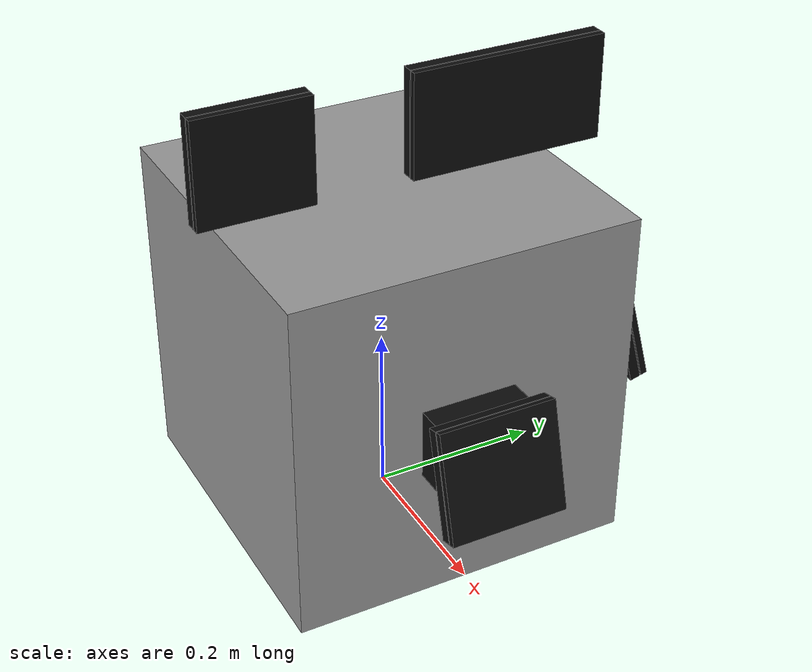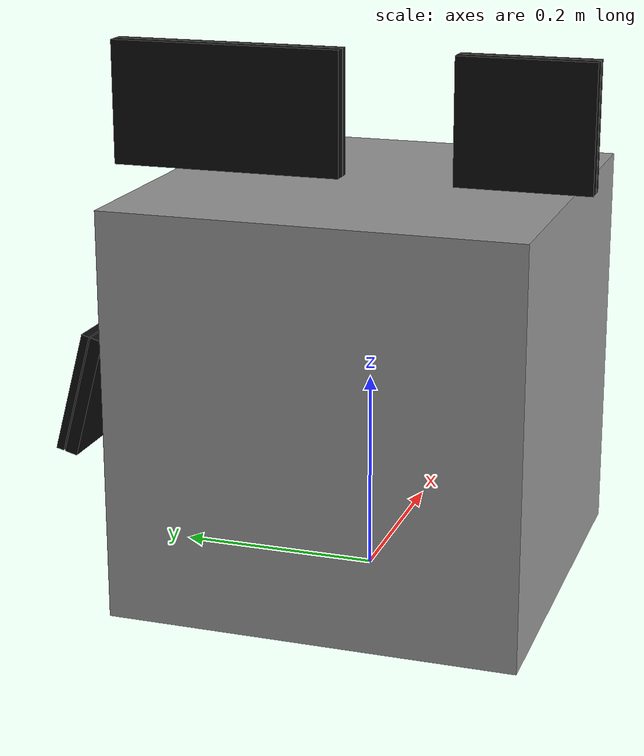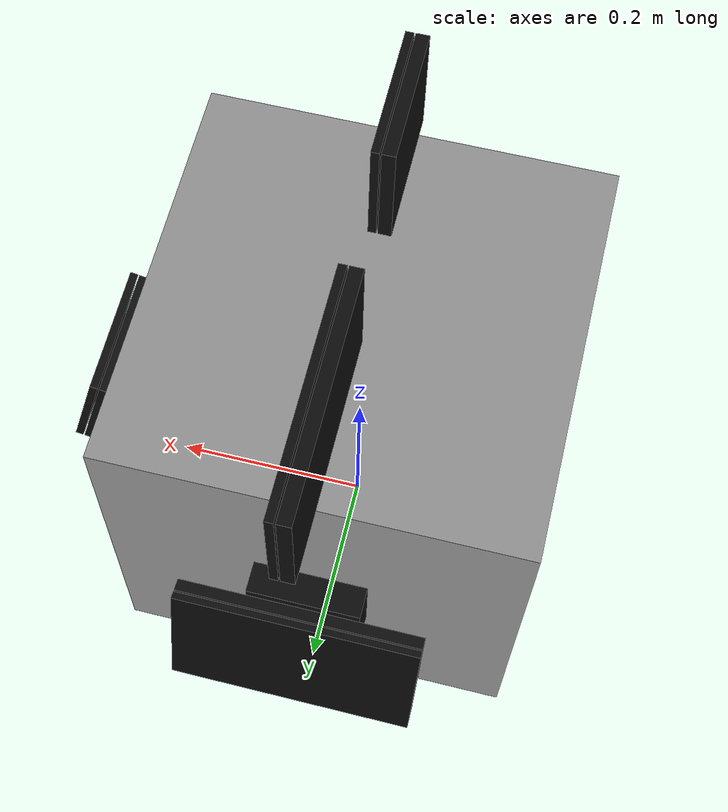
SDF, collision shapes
<?xml version="1.0" ?>
<!-- |    This document was autogenerated by xmacro4sdf from model.sdf.xmacro          | -->
<!-- |    EDITING THIS FILE BY HAND IS NOT RECOMMENDED                                 | -->
<sdf version="1.7">
	<!--include defination-->
	<!--rm22_armor_module example-->
	<model name="rm22_armor_module">
		<pose>0 0 0.2 0 0 0</pose>
		<link name="base_link">
			<inertial>
				<mass>0.4</mass>
				<inertia>
					<ixx>0.01066666666666667</ixx>
					<ixy>0</ixy>
					<ixz>0</ixz>
					<iyy>0.01066666666666667</iyy>
					<iyz>0</iyz>
					<izz>0.01066666666666667</izz>
				</inertia>
			</inertial>
			<visual name="visual">
				<geometry>
					<box>
						<size>0.4 0.4 0.4</size>
					</box>
				</geometry>
				<material>
					<ambient>0.6 0.6 0.6 1</ambient>
					<diffuse>0.6 0.6 0.6 1</diffuse>
				</material>
			</visual>
			<collision name="collision">
				<geometry>
					<box>
						<size>0.4 0.4 0.4</size>
					</box>
				</geometry>
			</collision>
		</link>
		<joint name="armor_1_joint" type="fixed">
			<pose relative_to="base_link">0 -0.15 0.2 0 0 0</pose>
			<parent>base_link</parent>
			<child>armor_1</child>
		</joint>
		<link name="armor_1">
			<pose relative_to="armor_1_joint">0 0 0 0 0 0</pose>
			<inertial>
				<pose>0 0 0.0625 0 0 0</pose>
				<mass>0.1</mass>
				<inertia>
					<ixx>0.0003065083333333333</ixx>
					<ixy>0</ixy>
					<ixz>0</ixz>
					<iyy>0.0001421774166666667</iyy>
					<iyz>0</iyz>
					<izz>0.0001670190833333333</izz>
				</inertia>
			</inertial>
			<visual name="visual">
				<geometry>
					<mesh>
						<uri>model://rm21_armor_module/meshes/small_armor.dae</uri>
					</mesh>
				</geometry>
				<material>
					<ambient>0.1 0.1 0.1</ambient>
					<diffuse>0.05 0.05 0.05</diffuse>
					<specular>0.6 0.6 0.6</specular>
				</material>
			</visual>
			<visual name="target_visual">
				<geometry>
					<mesh>
						<uri>model://rm21_armor_module/meshes/small_armor_target.dae</uri>
					</mesh>
				</geometry>
				<material>
					<ambient>0.1 0.1 0.1</ambient>
					<diffuse>0.05 0.05 0.05</diffuse>
					<specular>0.6 0.6 0.6</specular>
				</material>
			</visual>
			<visual name="armor_1_light_bar_visual">
				<geometry>
					<mesh>
						<uri>model://rm21_armor_module/meshes/small_armor_light_bar.dae</uri>
					</mesh>
				</geometry>
				<material>
					<ambient>1.0 1.0 1.0</ambient>
					<diffuse>1.0 1.0 1.0</diffuse>
					<specular>0.5 0.5 0.5</specular>
				</material>
			</visual>
			<visual name="sticker_visual">
				<pose>0.014 0 0.0625 1.5708 0 1.5708</pose>
				<geometry>
					<plane>
						<normal>0 0 1</normal>
						<size>0.130 0.120</size>
					</plane>
				</geometry>
				<material>
					<ambient>1.0 1.0 1.0</ambient>
					<diffuse>1.0 1.0 1.0</diffuse>
					<specular>0.1 0.1 0.1</specular>
					<pbr>
						<metal>
							<albedo_map>model://rm22_armor_module/materials/textures/ua_num1_0.png</albedo_map>
						</metal>
					</pbr>
				</material>
			</visual>
			<collision name="collision">
				<pose>0 0 0.0625 0 0 0</pose>
				<geometry>
					<box>
						<size>0.013 0.135 0.125</size>
					</box>
				</geometry>
			</collision>
			<collision name="target_collision">
				<pose>0.012 0 0.0625 0 0 0</pose>
				<geometry>
					<box>
						<size>0.008 0.135 0.125</size>
					</box>
				</geometry>
			</collision>
		</link>
		<joint name="armor_2_joint" type="fixed">
			<pose relative_to="base_link">0 0.15 0.2 0 0 0</pose>
			<parent>base_link</parent>
			<child>armor_2</child>
		</joint>
		<link name="armor_2">
			<pose relative_to="armor_2_joint">0 0 0 0 0 0</pose>
			<inertial>
				<pose>0 0 0.065 0 0 0</pose>
				<mass>0.1</mass>
				<inertia>
					<ixx>0.0006049666666666666</ixx>
					<ixy>0</ixy>
					<ixz>0</ixz>
					<iyy>0.00014203333333333333</iyy>
					<iyz>0</iyz>
					<izz>0.0004653333333333333</izz>
				</inertia>
			</inertial>
			<visual name="visual">
				<geometry>
					<mesh>
						<uri>model://rm21_armor_module/meshes/large_armor.stl</uri>
					</mesh>
				</geometry>
				<material>
					<ambient>0.1 0.1 0.1</ambient>
					<diffuse>0.05 0.05 0.05</diffuse>
					<specular>0.6 0.6 0.6</specular>
				</material>
			</visual>
			<visual name="target_visual">
				<geometry>
					<mesh>
						<uri>model://rm21_armor_module/meshes/large_armor_target.stl</uri>
					</mesh>
				</geometry>
				<material>
					<ambient>0.1 0.1 0.1</ambient>
					<diffuse>0.05 0.05 0.05</diffuse>
					<specular>0.6 0.6 0.6</specular>
				</material>
			</visual>
			<visual name="armor_2_light_bar_visual">
				<geometry>
					<mesh>
						<uri>model://rm21_armor_module/meshes/large_armor_light_bar.stl</uri>
					</mesh>
				</geometry>
				<material>
					<ambient>1.0 1.0 1.0</ambient>
					<diffuse>1.0 1.0 1.0</diffuse>
					<specular>0.5 0.5 0.5</specular>
				</material>
			</visual>
			<visual name="sticker_visual">
				<pose>0.014 0 0.0645 1.5708 0 1.5708</pose>
				<geometry>
					<plane>
						<normal>0 0 1</normal>
						<size>0.233 0.127</size>
					</plane>
				</geometry>
				<material>
					<ambient>1.0 1.0 1.0</ambient>
					<diffuse>1.0 1.0 1.0</diffuse>
					<specular>0.1 0.1 0.1</specular>
					<pbr>
						<metal>
							<albedo_map>model://rm21_armor_module/materials/textures/large_num1.png</albedo_map>
						</metal>
					</pbr>
				</material>
			</visual>
			<collision name="collision">
				<pose>0 0 0.0625 0 0 0</pose>
				<geometry>
					<box>
						<size>0.013 0.236 0.125</size>
					</box>
				</geometry>
			</collision>
			<collision name="target_collision">
				<pose>0.012 0 0.0625 0 0 0</pose>
				<geometry>
					<box>
						<size>0.008 0.236 0.125</size>
					</box>
				</geometry>
			</collision>
		</link>
		<joint name="armor_support_frame_3_joint" type="fixed">
			<pose relative_to="base_link">0.2 0 0 0 0 0</pose>
			<parent>base_link</parent>
			<child>armor_support_frame_3</child>
		</joint>
		<link name="armor_support_frame_3">
			<pose relative_to="armor_support_frame_3_joint">0 0 0 0 0 0</pose>
			<inertial>
				<pose>0.035 0 0 0 0 0</pose>
				<mass>0.1</mass>
				<inertia>
					<ixx>0.00023080833333333334</ixx>
					<ixy>0</ixy>
					<ixz>0</ixz>
					<iyy>0.00017014166666666668</iyy>
					<iyz>0</iyz>
					<izz>0.00014468333333333334</izz>
				</inertia>
			</inertial>
			<visual name="visual">
				<geometry>
					<mesh>
						<uri>model://rm21_armor_module/meshes/armor_support_frame.stl</uri>
					</mesh>
				</geometry>
				<material>
					<ambient>0.1 0.1 0.1</ambient>
					<diffuse>0.05 0.05 0.05</diffuse>
					<specular>0.6 0.6 0.6</specular>
				</material>
			</visual>
			<collision name="collision">
				<pose>0.015 0 0 0 0 0</pose>
				<geometry>
					<box>
						<size>0.03 0.11 0.08</size>
					</box>
				</geometry>
			</collision>
		</link>
		<joint name="armor_3_joint" type="fixed">
			<pose relative_to="armor_support_frame_3">0.075 0 -0.071 0 -0.262 0</pose>
			<parent>armor_support_frame_3</parent>
			<child>armor_3</child>
		</joint>
		<link name="armor_3">
			<pose relative_to="armor_3_joint">0 0 0 0 0 0</pose>
			<inertial>
				<pose>0 0 0.0625 0 0 0</pose>
				<mass>0.1</mass>
				<inertia>
					<ixx>0.0003065083333333333</ixx>
					<ixy>0</ixy>
					<ixz>0</ixz>
					<iyy>0.0001421774166666667</iyy>
					<iyz>0</iyz>
					<izz>0.0001670190833333333</izz>
				</inertia>
			</inertial>
			<visual name="visual">
				<geometry>
					<mesh>
						<uri>model://rm21_armor_module/meshes/small_armor.dae</uri>
					</mesh>
				</geometry>
				<material>
					<ambient>0.1 0.1 0.1</ambient>
					<diffuse>0.05 0.05 0.05</diffuse>
					<specular>0.6 0.6 0.6</specular>
				</material>
			</visual>
			<visual name="target_visual">
				<geometry>
					<mesh>
						<uri>model://rm21_armor_module/meshes/small_armor_target.dae</uri>
					</mesh>
				</geometry>
				<material>
					<ambient>0.1 0.1 0.1</ambient>
					<diffuse>0.05 0.05 0.05</diffuse>
					<specular>0.6 0.6 0.6</specular>
				</material>
			</visual>
			<visual name="armor_3_light_bar_visual">
				<geometry>
					<mesh>
						<uri>model://rm21_armor_module/meshes/small_armor_light_bar.dae</uri>
					</mesh>
				</geometry>
				<material>
					<ambient>1.0 1.0 1.0</ambient>
					<diffuse>1.0 1.0 1.0</diffuse>
					<specular>0.5 0.5 0.5</specular>
				</material>
			</visual>
			<visual name="sticker_visual">
				<pose>0.014 0 0.0625 1.5708 0 1.5708</pose>
				<geometry>
					<plane>
						<normal>0 0 1</normal>
						<size>0.130 0.120</size>
					</plane>
				</geometry>
				<material>
					<ambient>1.0 1.0 1.0</ambient>
					<diffuse>1.0 1.0 1.0</diffuse>
					<specular>0.1 0.1 0.1</specular>
					<pbr>
						<metal>
							<albedo_map>model://rm22_armor_module/materials/textures/ua_num2_1.png</albedo_map>
						</metal>
					</pbr>
				</material>
			</visual>
			<collision name="collision">
				<pose>0 0 0.0625 0 0 0</pose>
				<geometry>
					<box>
						<size>0.013 0.135 0.125</size>
					</box>
				</geometry>
			</collision>
			<collision name="target_collision">
				<pose>0.012 0 0.0625 0 0 0</pose>
				<geometry>
					<box>
						<size>0.008 0.135 0.125</size>
					</box>
				</geometry>
			</collision>
		</link>
		<joint name="armor_support_frame_4_joint" type="fixed">
			<pose relative_to="base_link">0 0.2 0 0 0 1.57</pose>
			<parent>base_link</parent>
			<child>armor_support_frame_4</child>
		</joint>
		<link name="armor_support_frame_4">
			<pose relative_to="armor_support_frame_4_joint">0 0 0 0 0 0</pose>
			<inertial>
				<pose>0.035 0 0 0 0 0</pose>
				<mass>0.1</mass>
				<inertia>
					<ixx>0.00023080833333333334</ixx>
					<ixy>0</ixy>
					<ixz>0</ixz>
					<iyy>0.00017014166666666668</iyy>
					<iyz>0</iyz>
					<izz>0.00014468333333333334</izz>
				</inertia>
			</inertial>
			<visual name="visual">
				<geometry>
					<mesh>
						<uri>model://rm21_armor_module/meshes/armor_support_frame.stl</uri>
					</mesh>
				</geometry>
				<material>
					<ambient>0.1 0.1 0.1</ambient>
					<diffuse>0.05 0.05 0.05</diffuse>
					<specular>0.6 0.6 0.6</specular>
				</material>
			</visual>
			<collision name="collision">
				<pose>0.015 0 0 0 0 0</pose>
				<geometry>
					<box>
						<size>0.03 0.11 0.08</size>
					</box>
				</geometry>
			</collision>
		</link>
		<joint name="armor_4_joint" type="fixed">
			<pose relative_to="armor_support_frame_4">0.075 0 -0.071 0 -0.262 0</pose>
			<parent>armor_support_frame_4</parent>
			<child>armor_4</child>
		</joint>
		<link name="armor_4">
			<pose relative_to="armor_4_joint">0 0 0 0 0 0</pose>
			<inertial>
				<pose>0 0 0.065 0 0 0</pose>
				<mass>0.1</mass>
				<inertia>
					<ixx>0.0006049666666666666</ixx>
					<ixy>0</ixy>
					<ixz>0</ixz>
					<iyy>0.00014203333333333333</iyy>
					<iyz>0</iyz>
					<izz>0.0004653333333333333</izz>
				</inertia>
			</inertial>
			<visual name="visual">
				<geometry>
					<mesh>
						<uri>model://rm21_armor_module/meshes/large_armor.stl</uri>
					</mesh>
				</geometry>
				<material>
					<ambient>0.1 0.1 0.1</ambient>
					<diffuse>0.05 0.05 0.05</diffuse>
					<specular>0.6 0.6 0.6</specular>
				</material>
			</visual>
			<visual name="target_visual">
				<geometry>
					<mesh>
						<uri>model://rm21_armor_module/meshes/large_armor_target.stl</uri>
					</mesh>
				</geometry>
				<material>
					<ambient>0.1 0.1 0.1</ambient>
					<diffuse>0.05 0.05 0.05</diffuse>
					<specular>0.6 0.6 0.6</specular>
				</material>
			</visual>
			<visual name="armor_4_light_bar_visual">
				<geometry>
					<mesh>
						<uri>model://rm21_armor_module/meshes/large_armor_light_bar.stl</uri>
					</mesh>
				</geometry>
				<material>
					<ambient>1.0 1.0 1.0</ambient>
					<diffuse>1.0 1.0 1.0</diffuse>
					<specular>0.5 0.5 0.5</specular>
				</material>
			</visual>
			<collision name="collision">
				<pose>0 0 0.0625 0 0 0</pose>
				<geometry>
					<box>
						<size>0.013 0.236 0.125</size>
					</box>
				</geometry>
			</collision>
			<collision name="target_collision">
				<pose>0.012 0 0.0625 0 0 0</pose>
				<geometry>
					<box>
						<size>0.008 0.236 0.125</size>
					</box>
				</geometry>
			</collision>
		</link>
	</model>
</sdf>
